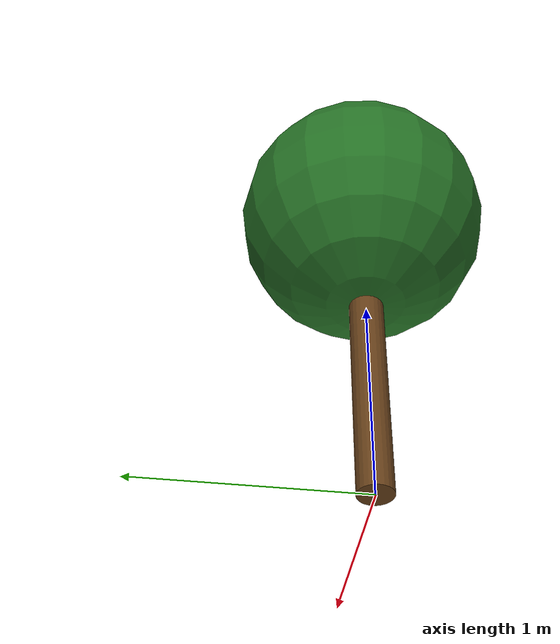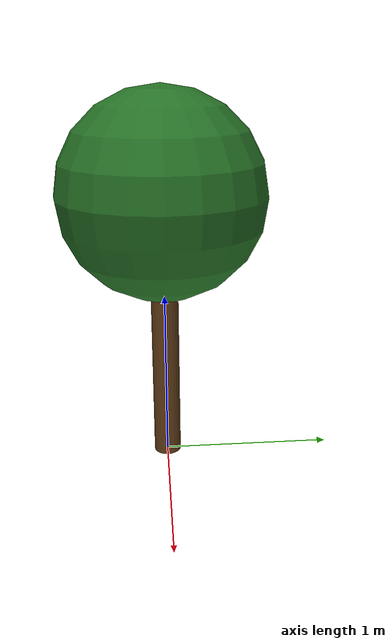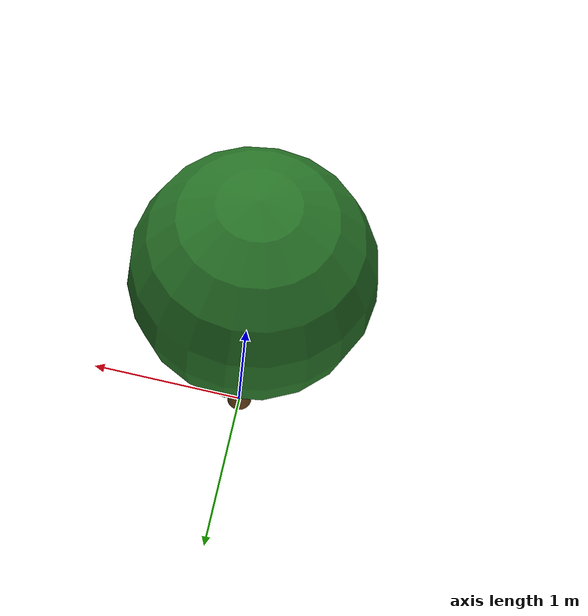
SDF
<?xml version="1.0"?>
<sdf version="1.9">
  <model name="apple_tree">
    <static>true</static>

    <link name="trunk_link">
      <visual name="trunk_visual">
        <geometry><cylinder><radius>0.08</radius><length>1.2</length></cylinder></geometry>
        <material><ambient>0.4 0.25 0.1 1</ambient><diffuse>0.4 0.25 0.1 1</diffuse></material>
      </visual>
      <collision name="trunk_collision">
        <geometry><cylinder><radius>0.08</radius><length>1.2</length></cylinder></geometry>
      </collision>
      <pose>0 0 0.6 0 0 0</pose>
    </link>

    <!-- Meyvelerin baglanacagi referans cerceve; gercek TASARIMDA Blender'daki
         dal geometrisine karsilik gelen birden fazla branch_link olabilir. -->
    <link name="branch_link">
      <visual name="canopy_visual">
        <geometry><sphere><radius>0.6</radius></sphere></geometry>
        <material><ambient>0.15 0.45 0.15 1</ambient><diffuse>0.15 0.45 0.15 1</diffuse></material>
      </visual>
      <collision name="canopy_collision">
        <geometry><sphere><radius>0.6</radius></sphere></geometry>
      </collision>
      <pose>0 0 1.6 0 0 0</pose>
    </link>

    <joint name="trunk_to_branch" type="fixed">
      <parent>trunk_link</parent>
      <child>branch_link</child>
    </joint>
  </model>
</sdf>
